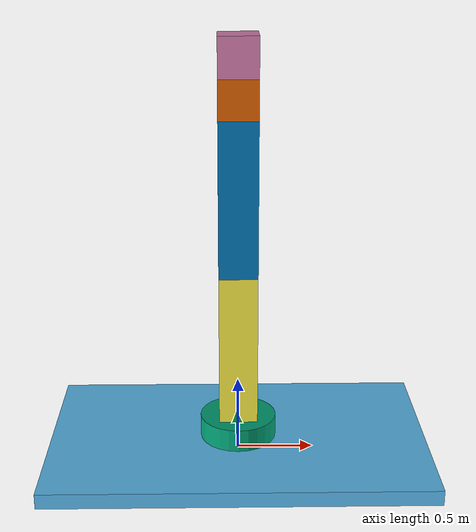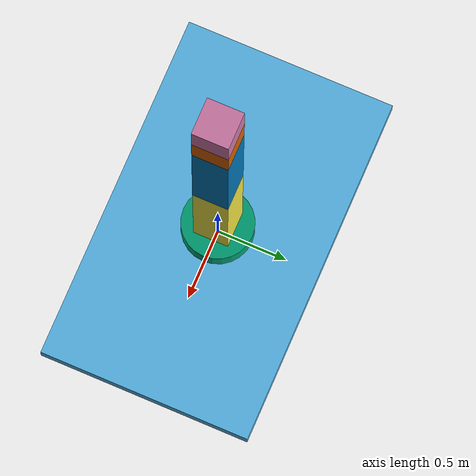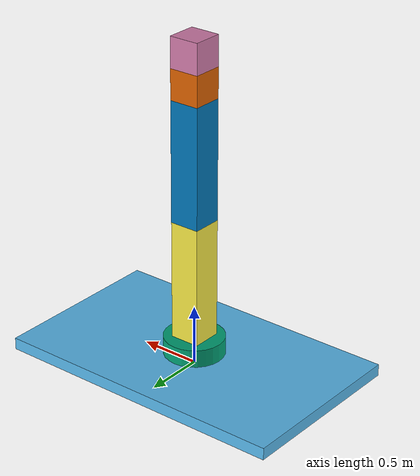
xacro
<?xml version="1.0"?>
<robot xmlns:xacro="http://www.ros.org/wiki/xacro" name="arm">

    <link name="world"/>

    <joint name="base_joint" type="fixed">
        <parent link="world"/>
        <child link="base_link"/>
        <origin xyz="0.0 0.0 0.0" rpy="0.0 0.0 0.0"/>
    </joint>

    <xacro:property name="base_length" value="2.5"/>
    <xacro:property name="base_width" value="1.5"/>
`    <xacro:property name="base_height" value=".1"/>
    <link name="base_link">

        <visual>
            <origin xyz="0.0 0.0 ${base_height/2}" rpy="0.0 0.0 0.0"/>
            <geometry>
                <box size="${base_length} ${base_width} ${base_height}"/>
            </geometry>
        </visual>

        <collision>
            <origin xyz="0.0 0.0 ${base_height/2}" rpy="0.0 0.0 0.0"/>
            <geometry>
                <box size="${base_length} ${base_width} ${base_height}"/>
            </geometry>
        </collision>
    </link>

    <joint name="axis1" type="revolute">
        <parent link="base_link"/>
        <child link="link1"/>
        <axis xyz="0 0 1"/>
        <limit lower="-3.14159" upper="3.14159" velocity="50.0" effort="1000.0"/>
        <origin xyz="0 0 0" rpy="0 0 0"/>
    </joint>

    <xacro:property name="link1_length" value="0.5"/>
    <xacro:property name="link1_width" value="0.25"/>
    <xacro:property name="link1_height" value="0.15"/>
    <link name="link1">
        <visual>
            <origin xyz="0.0 0.0 ${base_height + (link1_height / 2)}" rpy="0.0 0.0 0.0"/>
            <geometry>
                <cylinder radius="${link1_width}" length="${link1_height}"/>
            </geometry>
        </visual>

        <collision>
            <origin xyz="0.0 0.0 ${link1_length / 2}" rpy="0.0 0.0 0.0"/>
            <geometry>
                <cylinder radius="${link1_width}" length="${link1_height}"/>
            </geometry>
        </collision>
    </link>

    <joint name="axis2" type="revolute">
        <parent link="link1"/>
        <child link="link2"/>
        <axis xyz="0 1 0"/>
        <limit lower="-3.14159" upper="3.14159" velocity="50.0" effort="1000.0"/>
        <origin xyz="0 0 ${base_height + link1_height}" rpy="0 0 0"/>
    </joint>

    <xacro:property name="link2_length" value="1"/>
    <xacro:property name="link2_width" value="0.25"/>
    <xacro:property name="link2_height" value="0.25"/>
    <link name="link2">
        <visual>
            <origin xyz="0.0 0.0 ${link2_length / 2}" rpy="0.0 ${pi / 2} 0.0"/>
            <geometry>
                <box size="${link2_length} ${link2_width} ${link2_height}"/>
            </geometry>
        </visual>

        <collision>
            <origin xyz="0.0 0.0 ${link2_length / 2}" rpy="0.0 0.0 0.0"/>
            <geometry>
                <box size="${link2_length} ${link2_width} ${link2_height}"/>
            </geometry>
        </collision>
    </link>

    <joint name="axis3" type="revolute">
        <parent link="link2"/>
        <child link="link3"/>
        <axis xyz="0 1 0"/>
        <limit lower="-3.14159" upper="3.14159" velocity="50.0" effort="1000.0"/>
        <origin xyz="0 0 ${link2_length}" rpy="0 0 0"/>
    </joint>

    <xacro:property name="link3_length" value="1"/>
    <xacro:property name="link3_width" value="0.25"/>
    <xacro:property name="link3_height" value="0.25"/>
    <link name="link3">
        <visual>
            <origin xyz="0.0 0.0 ${link3_length / 2}" rpy="0.0 ${pi / 2} 0.0"/>
            <geometry>
                <box size="${link3_length} ${link3_width} ${link3_height}"/>
            </geometry>
        </visual>

        <collision>
            <origin xyz="0.0 0.0 ${link2_length / 2}" rpy="0.0 0.0 0.0"/>
            <geometry>
                <box size="${link3_length} ${link3_width} ${link3_height}"/>
            </geometry>
        </collision>
    </link>

    <joint name="axis4" type="revolute">
        <parent link="link3"/>
        <child link="link4"/>
        <axis xyz="0 1 0"/>
        <limit lower="-3.14159" upper="3.14159" velocity="50.0" effort="1000.0"/>
        <origin xyz="0 0 ${link3_length}" rpy="0 0 0"/>
    </joint>

    <xacro:property name="link4_length" value="0.25"/>
    <xacro:property name="link4_width" value="0.25"/>
    <xacro:property name="link4_height" value="0.25"/>
    <link name="link4">
        <visual>
            <origin xyz="0.0 0.0 ${link4_length / 2}" rpy="0.0 ${pi / 2} 0.0"/>
            <geometry>
                <box size="${link4_length} ${link4_width} ${link4_height}"/>
            </geometry>
        </visual>

        <collision>
            <origin xyz="0.0 0.0 ${link3_length / 2}" rpy="0.0 0.0 0.0"/>
            <geometry>
                <box size="${link4_length} ${link4_width} ${link4_height}"/>
            </geometry>
        </collision>
    </link>

    <joint name="axis5" type="revolute">
        <parent link="link4"/>
        <child link="link5"/>
        <axis xyz="0 0 1"/>
        <limit lower="-3.14159" upper="3.14159" velocity="50.0" effort="1000.0"/>
        <origin xyz="0 0 ${link4_length}" rpy="0 0 0"/>
    </joint>

    <xacro:property name="link5_length" value="0.25"/>
    <xacro:property name="link5_width" value="0.25"/>
    <xacro:property name="link5_height" value="0.25"/>
    <link name="link5">
        <visual>
            <origin xyz="0.0 0.0 ${link5_length / 2}" rpy="0.0 ${pi / 2} 0.0"/>
            <geometry>
                <box size="${link5_length} ${link5_width} ${link5_height}"/>
            </geometry>
        </visual>

        <collision>
            <origin xyz="0.0 0.0 ${link4_length / 2}" rpy="0.0 0.0 0.0"/>
            <geometry>
                <box size="${link5_length} ${link5_width} ${link5_height}"/>
            </geometry>
        </collision>
    </link>

</robot>
